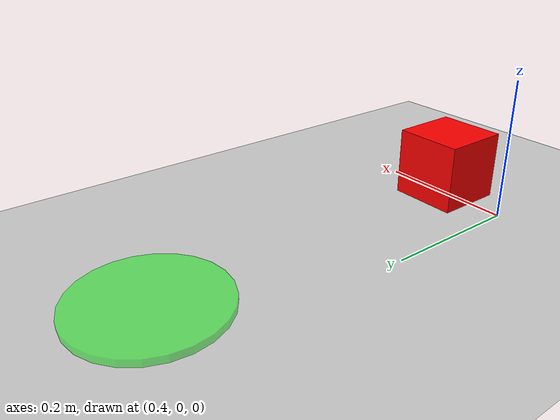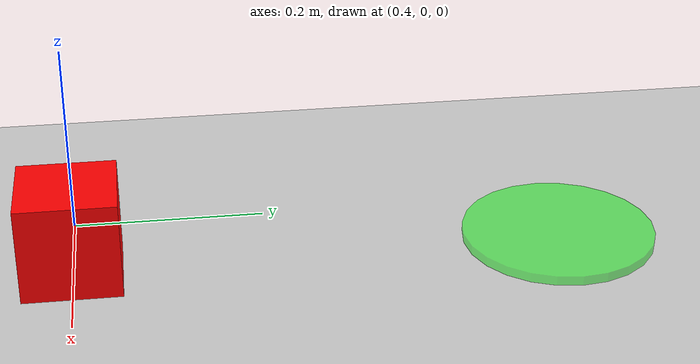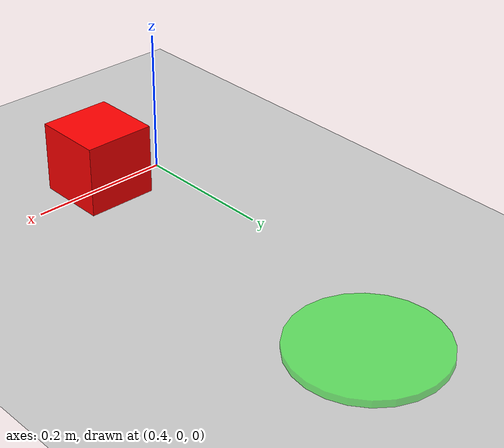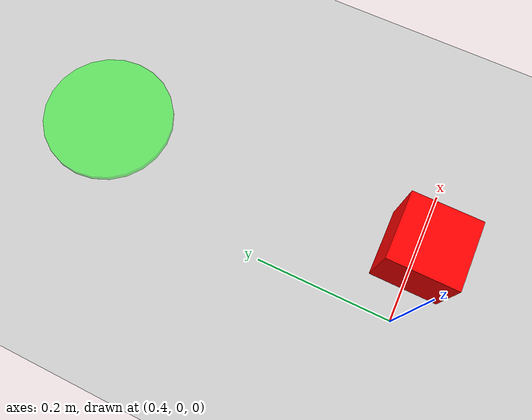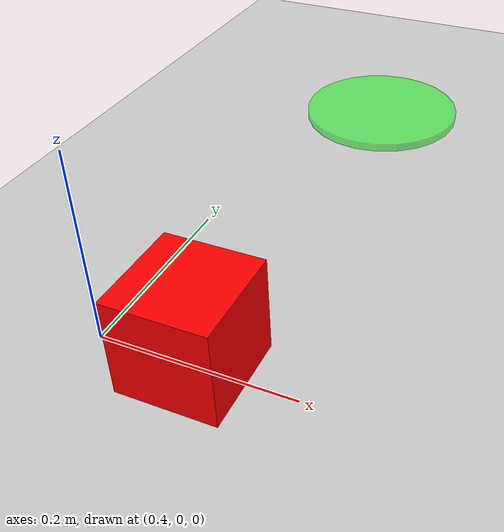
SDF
<?xml version="1.0" ?>
<sdf version="1.8">
  <world name="robot_task_world">
    <include><uri>https://fuel.gazebosim.org/1.0/OpenRobotics/models/Sun</uri></include>
    <include><uri>https://fuel.gazebosim.org/1.0/OpenRobotics/models/Ground Plane</uri></include>

    <model name="cube">
      <pose>0.5 0 0.05 0 0 0</pose>
      <link name="link">
        <collision name="col"><geometry><box><size>0.1 0.1 0.1</size></box></geometry></collision>
        <visual name="vis">
          <geometry><box><size>0.1 0.1 0.1</size></box></geometry>
          <material><ambient>1 0 0 1</ambient></material>
        </visual>
      </link>
    </model>

    <model name="target_marker">
      <static>true</static>
      <pose>0.5 0.5 0.01 0 0 0</pose>
      <link name="link">
        <visual name="vis">
          <geometry><cylinder><radius>0.1</radius><length>0.01</length></cylinder></geometry>
          <material><ambient>0 1 0 0.5</ambient></material>
        </visual>
      </link>
    </model>
  </world>
</sdf>
